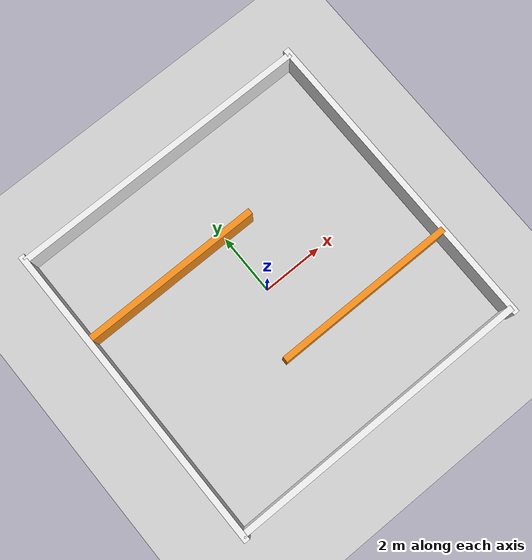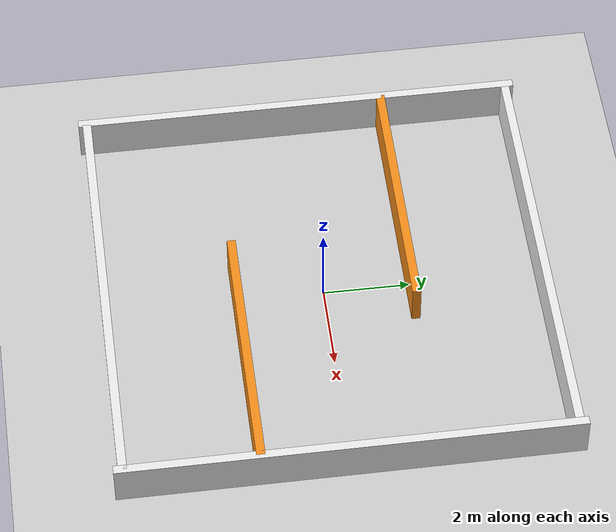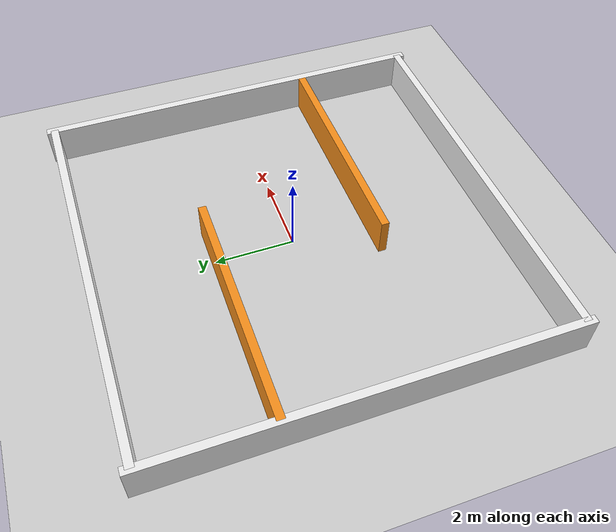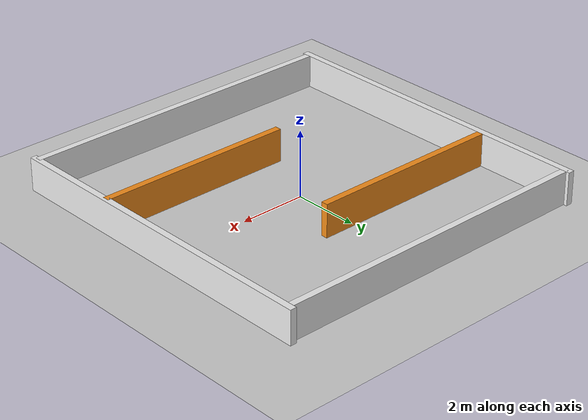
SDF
<?xml version="1.0"?>
<sdf version="1.6">
  <world name="maze_10x10">

    <!-- ============================================================
         PHYSICS
         ============================================================ -->
    <physics type="ode">
      <real_time_update_rate>1000</real_time_update_rate>
      <max_step_size>0.001</max_step_size>
      <real_time_factor>1</real_time_factor>
      <ode>
        <solver>
          <type>quick</type>
          <iters>150</iters>
          <precon_iters>0</precon_iters>
          <sor>1.4</sor>
        </solver>
        <constraints>
          <cfm>1e-5</cfm>
          <erp>0.2</erp>
          <contact_max_correcting_vel>2000</contact_max_correcting_vel>
          <contact_surface_layer>0.01</contact_surface_layer>
        </constraints>
      </ode>
    </physics>

    <!-- ============================================================
         SCENE / LIGHTING
         ============================================================ -->
    <scene>
      <ambient>0.4 0.4 0.4 1</ambient>
      <background>0.7 0.7 0.7 1</background>
      <shadows>false</shadows>
    </scene>

    <light name="sun" type="directional">
      <cast_shadows>false</cast_shadows>
      <pose>0 0 10 0 0 0</pose>
      <diffuse>0.8 0.8 0.8 1</diffuse>
      <specular>0.2 0.2 0.2 1</specular>
      <direction>-0.5 0.1 -0.9</direction>
    </light>

    <!-- ============================================================
         GROUND PLANE
         ============================================================ -->
    <model name="ground_plane">
      <static>true</static>
      <link name="link">
        <collision name="collision">
          <geometry>
            <plane>
              <normal>0 0 1</normal>
              <size>100 100</size>
            </plane>
          </geometry>
          <surface>
            <friction><ode><mu>1</mu><mu2>1</mu2></ode></friction>
          </surface>
        </collision>
        <visual name="visual">
          <cast_shadows>false</cast_shadows>
          <geometry>
            <plane>
              <normal>0 0 1</normal>
              <size>100 100</size>
            </plane>
          </geometry>
          <material>
            <script>
              <uri>file://media/materials/scripts/gazebo.material</uri>
              <name>Gazebo/Grey</name>
            </script>
          </material>
        </visual>
      </link>
    </model>

    <model name="wall_north">
      <static>true</static>
      <pose>0 5.0 0.5 0 0 0</pose>
      <link name="link">
        <collision name="collision">
          <geometry><box><size>10.0 0.2 1.0</size></box></geometry>
        </collision>
        <visual name="visual">
          <geometry><box><size>10.0 0.2 1.0</size></box></geometry>
          <material><script>
            <uri>file://media/materials/scripts/gazebo.material</uri>
            <name>Gazebo/White</name>
          </script></material>
        </visual>
      </link>
    </model>

    <model name="wall_south">
      <static>true</static>
      <pose>0 -5.0 0.5 0 0 0</pose>
      <link name="link">
        <collision name="collision">
          <geometry><box><size>10.0 0.2 1.0</size></box></geometry>
        </collision>
        <visual name="visual">
          <geometry><box><size>10.0 0.2 1.0</size></box></geometry>
          <material><script>
            <uri>file://media/materials/scripts/gazebo.material</uri>
            <name>Gazebo/White</name>
          </script></material>
        </visual>
      </link>
    </model>

    <model name="wall_east">
      <static>true</static>
      <pose>5.0 0 0.5 0 0 0</pose>
      <link name="link">
        <collision name="collision">
          <geometry><box><size>0.2 10.4 1.0</size></box></geometry>
        </collision>
        <visual name="visual">
          <geometry><box><size>0.2 10.4 1.0</size></box></geometry>
          <material><script>
            <uri>file://media/materials/scripts/gazebo.material</uri>
            <name>Gazebo/White</name>
          </script></material>
        </visual>
      </link>
    </model>

    <model name="wall_west">
      <static>true</static>
      <pose>-5.0 0 0.5 0 0 0</pose>
      <link name="link">
        <collision name="collision">
          <geometry><box><size>0.2 10.4 1.0</size></box></geometry>
        </collision>
        <visual name="visual">
          <geometry><box><size>0.2 10.4 1.0</size></box></geometry>
          <material><script>
            <uri>file://media/materials/scripts/gazebo.material</uri>
            <name>Gazebo/White</name>
          </script></material>
        </visual>
      </link>
    </model>

    <!-- ============================================================
         MAZE INTERNAL WALLS
         ============================================================ -->

    <model name="maze_wall_a">
      <static>true</static>
      <pose>-2.0 2.0 0.5 0 0 0</pose>
      <link name="link">
        <collision name="collision">
          <geometry><box><size>6.0 0.2 1.0</size></box></geometry>
        </collision>
        <visual name="visual">
          <geometry><box><size>6.0 0.2 1.0</size></box></geometry>
          <material><script>
            <uri>file://media/materials/scripts/gazebo.material</uri>
            <name>Gazebo/Orange</name>
          </script></material>
        </visual>
      </link>
    </model>

    <model name="maze_wall_b">
      <static>true</static>
      <pose>2.0 -2.0 0.5 0 0 0</pose>
      <link name="link">
        <collision name="collision">
          <geometry><box><size>6.0 0.2 1.0</size></box></geometry>
        </collision>
        <visual name="visual">
          <geometry><box><size>6.0 0.2 1.0</size></box></geometry>
          <material><script>
            <uri>file://media/materials/scripts/gazebo.material</uri>
            <name>Gazebo/Orange</name>
          </script></material>
        </visual>
      </link>
    </model>

    <!-- ============================================================
         GUI CAMERA START POSITION
         ============================================================ -->
    <gui fullscreen="0">
      <camera name="user_camera">
        <pose>0 -14 10 0 0.65 1.57</pose>
        <view_controller>orbit</view_controller>
      </camera>
    </gui>

  </world>
</sdf>
